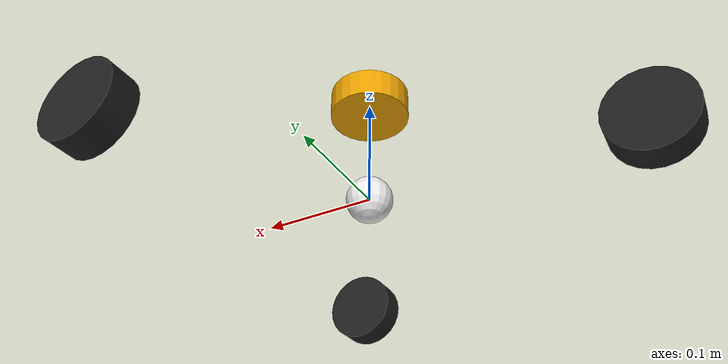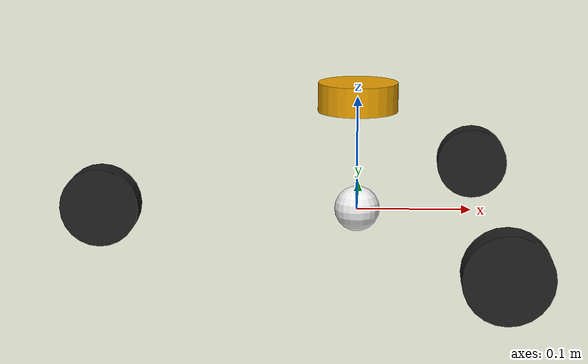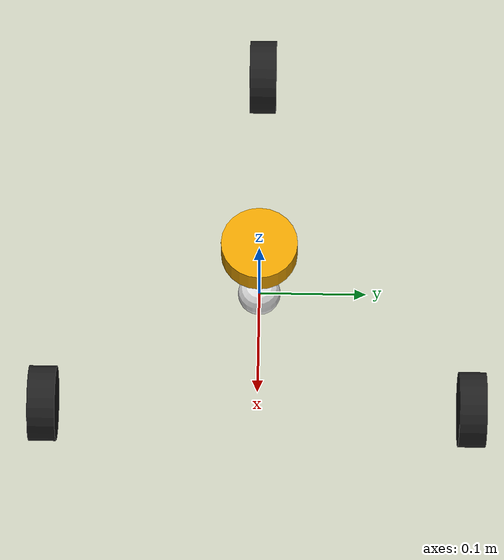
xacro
<?xml version="1.0"?>
<robot name="ghost1" xmlns:xacro="http://ros.org/wiki/xacro">

    <xacro:include filename="$(find ghost_ros)/urdf/swerve_macros.xacro"/>

    <xacro:property name="l_wheel" value="0.2286"/> <!-- 9" center to wheel modules-->
    <xacro:property name="r_wheel" value="0.034925"/> <!-- 1.375" wheel radius-->
    <xacro:property name="width_wheel" value="0.0254"/> <!-- 1" wheel width-->
    <xacro:property name="com_radius" value="0.02"/>
    <xacro:property name="d2r" value="${3.14159/180}"/>

    <link name="base_link">
        <visual>
        <origin xyz="0 0 0" rpy="0 0 0"/>
        <geometry>
            <sphere radius="${com_radius}"/>
        </geometry>
        <material name="white"/>
        </visual>

        <!--Inertia estimated for solid cylinder of radius 9" and height 3" with mass 7kg-->
        <inertial>
            <origin xyz="0 0 0" rpy="0 0 0"/>
            <mass value="10"/>
            <inertia
                ixx="0.094839" ixy="0.0" ixz="0.0"
                iyy="0.094839" iyz="0.0"
                izz="0.182903"/>
        </inertial>

        <gazebo>
            <maxVel>3.0</maxVel>
        </gazebo>
    </link>

    <link name="base_footprint">
        <inertial>
            <origin xyz="0 0 0" rpy="0 0 0"/>
            <mass value="0.00001"/>
            <inertia
                ixx="0.00001" ixy="0.0" ixz="0.0"
                iyy="0.00001" iyz="0.0"
                izz="0.00001"/>
        </inertial>
    </link>

    <joint name="base_footprint_joint" type="fixed">
        <parent link="base_link"/>
        <child link="base_footprint"/>
        <origin xyz="0 0 ${- r_wheel}" rpy="0 0 0"/>
        <axis xyz="0 0 1"/>
    </joint>

    <!-- Steering Modules -->
    <xacro:steering_macro id="1"></xacro:steering_macro>
    <xacro:steering_macro id="2"></xacro:steering_macro>
    <xacro:steering_macro id="3"></xacro:steering_macro>

    <!-- Wheel Modules -->
    <xacro:wheel_macro id="1" r_wheel="${r_wheel}" width_wheel="${width_wheel}" collision_factor="8"></xacro:wheel_macro>
    <xacro:wheel_macro id="2" r_wheel="${r_wheel}" width_wheel="${width_wheel}" collision_factor="8"></xacro:wheel_macro>
    <xacro:wheel_macro id="3" r_wheel="${r_wheel}" width_wheel="${width_wheel}" collision_factor="8"></xacro:wheel_macro>

    <!-- Joints -->
    <joint name="steering_1" type="continuous">
        <parent link="base_link"/>
        <child link="mod_1"/>
        <origin xyz="${l_wheel/2} ${-l_wheel*0.866} 0" rpy="0 0 0"/>
        <axis xyz="0 0 1"/>
    </joint>

    <joint name="steering_2" type="continuous">
        <parent link="base_link"/>
        <child link="mod_2"/>
        <origin xyz="${l_wheel/2} ${l_wheel*0.866} 0" rpy="0 0 0"/>
        <axis xyz="0 0 1"/>
    </joint>

    <joint name="steering_3" type="continuous">
        <parent link="base_link"/>
        <child link="mod_3"/>
        <origin xyz="${-l_wheel} 0 0" rpy="0 0 0"/>
        <axis xyz="0 0 1"/>
    </joint>

    <joint name="driveshaft_1" type="continuous">
        <parent link="mod_1"/>
        <child link="wheel_1"/>
        <origin xyz="0 0 0" rpy="${90*d2r} 0 0"/>
        <axis xyz="0 0 1"/>
    </joint>

    <joint name="driveshaft_2" type="continuous">
        <parent link="mod_2"/>
        <child link="wheel_2"/>
        <origin xyz="0 0 0" rpy="${90*d2r} 0 0"/>
        <axis xyz="0 0 1"/>
    </joint>

    <joint name="driveshaft_3" type="continuous">
        <parent link="mod_3"/>
        <child link="wheel_3"/>
        <origin xyz="0 0 0" rpy="${90*d2r} 0 0"/>
        <axis xyz="0 0 1"/>
    </joint>

    <!-- Sensors -->
    <link name="lidar_link">
        <inertial>
            <origin xyz="0.0 0 0.0" rpy="0 0 0"/>
            <mass value="0.125"/>
            <inertia ixx="0.001"  ixy="0"  ixz="0" iyy="0.001" iyz="0" izz="0.001" />
        </inertial>

        <visual>
            <origin xyz="0 0 0" rpy="0 0 0"/>
            <geometry>
            <cylinder radius="${0.06985/2}" length="0.0254"/>
            </geometry>
        </visual>
    </link>

    <joint name="lidar_joint" type="fixed">
        <parent link="base_link"/>
        <child link="lidar_link"/>
        <origin xyz="0 0 0.1" rpy="0 0 0"/>
    </joint>

    <link name="camera_base_link">
        <inertial>
            <origin xyz="0.0 0 0.0" rpy="0 0 0"/>
            <mass value="0.125"/>
            <inertia ixx="0.001"  ixy="0.001"  ixz="0.001" iyy="0.001" iyz="0.001" izz="0.001" />
        </inertial>
    </link>

    <joint name="camera_base_joint" type="fixed">
        <parent link="base_link"/>
        <child link="camera_base_link"/>
        <origin xyz="${l_wheel/2} 0 0.33" rpy="0 0 0"/>
    </joint>

    <link name="camera_view_link">
        <inertial>
            <origin xyz="0.0 0 0.0" rpy="0 0 0"/>
            <mass value="0.125"/>
            <inertia ixx="0.001"  ixy="0.001"  ixz="0.001" iyy="0.001" iyz="0.001" izz="0.001" />
        </inertial>
    </link>

    <joint name="camera_view_joint" type="fixed">
        <parent link="camera_base_link"/>
        <child link="camera_view_link"/>
        <origin xyz="0 0 0" rpy="0 0.7853975 0"/>
    </joint>
</robot>

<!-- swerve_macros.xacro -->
<robot xmlns:xacro="http://www.ros.org/wiki/xacro">
    <!-- Steering Module Macro -->
    <xacro:macro name="steering_macro" params="id">
    <link name="mod_${id}">
        <inertial>
            <origin xyz="0 0 0" rpy="0 0 0"/>
            <mass value="0.4545"/>
            <inertia
                ixx="0.000975" ixy="0.0" ixz="0.0"
                iyy="0.000975" iyz="0.0"
                izz="0.001902"/>
        </inertial>
    </link>
    </xacro:macro>

    <!-- Wheel Macro -->
    <xacro:macro name="wheel_macro" params="id r_wheel width_wheel collision_factor">
    <link name="wheel_${id}">
            <visual>
                <geometry>
                    <cylinder radius="${r_wheel}" length="${width_wheel}"/>
                </geometry>
                <material name="black"/>
            </visual>

            <collision>
                <origin xyz="0 0 0" rpy="0 0 0"/>
                <geometry>
                    <cylinder radius="${r_wheel}" length="${width_wheel/collision_factor}"/>
                </geometry>
            </collision>

            <!--Inertia estimated for solid cylinder of radius 2.5" and height 1" with mass 1 lb-->
            <inertial>
                <origin xyz="0 0 0" rpy="0 0 0"/>
                <mass value="0.4545"/>
                <inertia
                    ixx="0.000482" ixy="0.0" ixz="0.0"
                    iyy="0.000482" iyz="0.0"
                    izz="0.000914"/>
            </inertial>
    </link>

    <gazebo reference="wheel_${id}">
        <collision>
            <origin xyz="0 0 0" rpy="0 0 0"/>
            <geometry>
                <cylinder>
                    <radius>${r_wheel}</radius>
                    <length>${width_wheel/collision_factor}</length>
                </cylinder>
            </geometry>

            <surface>
                <friction>
                    <torsional>
                        <coefficient>1.0</coefficient>
                        <patch_radius>0.01</patch_radius>
                    </torsional>
                </friction>
            </surface>
        </collision>

        <material>Gazebo/White</material>
    </gazebo>
    </xacro:macro>
</robot>
